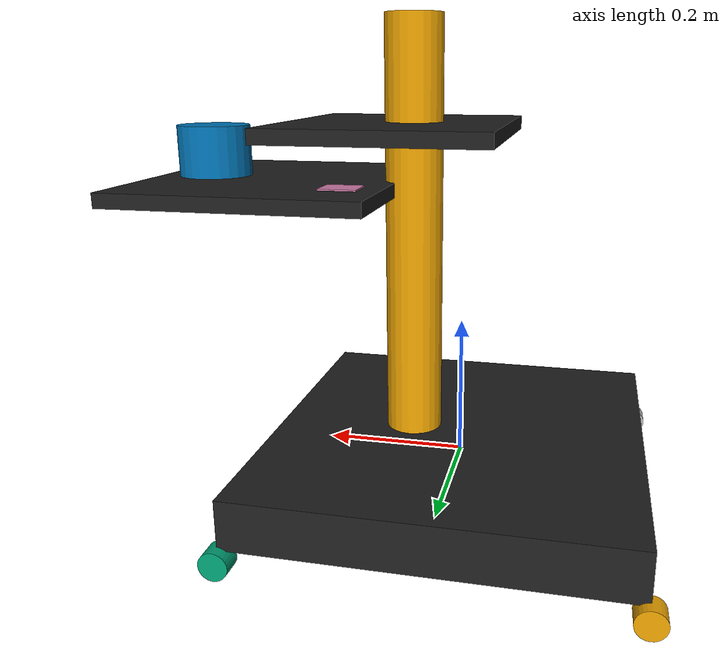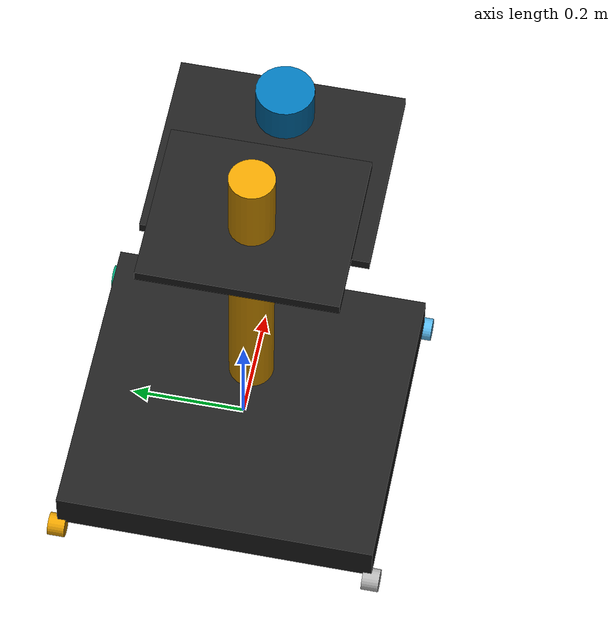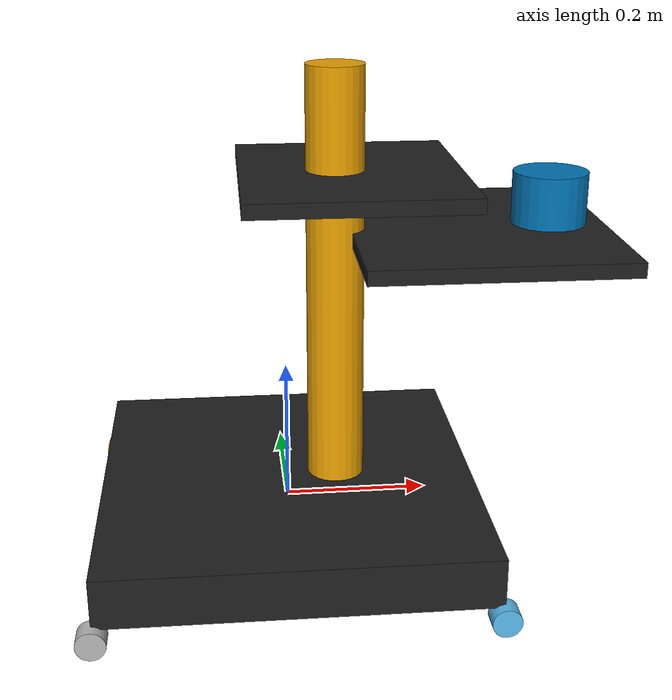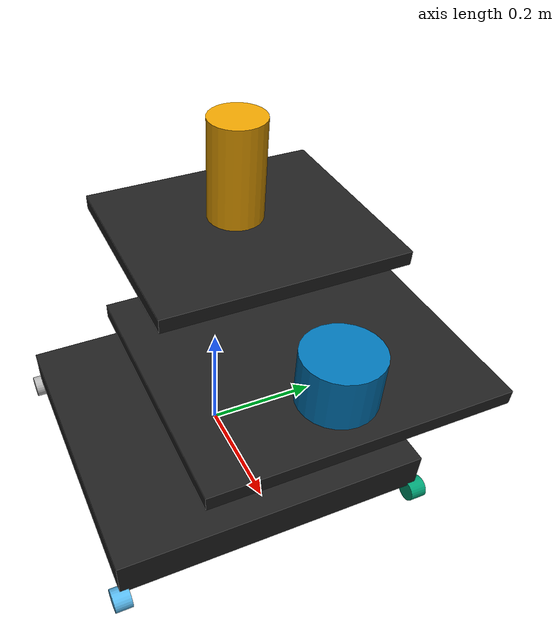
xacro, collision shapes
<?xml version="1.0"?>
<robot name="home_robot" xmlns:xacro="http://ros.org/wiki/xacro">
 <xacro:include filename="$(find robot_description)/urdf/common_properties.xacro"/>
<xacro:include filename="$(find robot_description)/urdf/_t265.urdf.xacro"/>
<xacro:include filename="$(find robot_description)/urdf/VLP-16.urdf.xacro"/>
<xacro:macro name ="home_robot_platform">
 <!-- Robot dimensions -->
  <xacro:property name="base_length" value="0.53" />
  <xacro:property name="base_width" value="0.56" />
  <xacro:property name="base_height" value="0.07" />
  <xacro:property name="wheel_diam" value="0.04" />
  <xacro:property name="wheel_width" value="0.03" />
  <xacro:property name="platform1_elevation" value="0.83" />
  <xacro:property name="platform2_elevation" value="1.0" />
  <xacro:property name="column_diam" value="0.04" />
  <xacro:property name="platform1_length" value="0.35" />
  <xacro:property name="platform1_width" value="0.40" />
  <xacro:property name="platform2_length" value="0.3" />
  <xacro:property name="platform2_width" value="0.35" />
  <xacro:property name="platform_height" value="0.02" />
  <xacro:property name="platform1_elevation" value="0.71" />
  <xacro:property name="platform2_elevation" value="0.87" />
  <xacro:property name="pi" value="3.1415926535897931" />

<!-- Macro to define wheels at back  -->
  <xacro:macro name="wheel_back" params="suffix reflect">

  <joint name="wheel_back_${suffix}_joint" type="continuous">
    <parent link="base_link"/>
    <child link="wheel_back_${suffix}_link"/>
    <axis xyz="0 0 1"/>
    <origin xyz="${-base_length/2} ${-base_width/2*reflect} ${wheel_diam/2 - base_height}" rpy="${-pi/2} 0 0"/>
  </joint>

  <link name="wheel_back_${suffix}_link">
    <visual>
      <geometry>
        <cylinder length="${wheel_width}" radius="${wheel_diam/2}"/>
      </geometry>
      <origin rpy="0 0 0" xyz="0 0 0"/>
      <material name="dark"/>
    </visual>

   <collision>
      <origin rpy="0 0 0" xyz="0 0 0"/>
      <geometry>
        <cylinder length="${wheel_width}" radius="${wheel_diam/2}"/>
      </geometry>
    </collision>

    <inertial>
 <!-- Center of mass origin -->
    <origin xyz="0 0 0"/>

      <mass value="3.4"/>
      <inertia ixx="0.0067" ixy="-0" ixz="0"
               iyy="0.0123" iyz="0"
               izz="0.0067" />
    </inertial>

  </link>

  </xacro:macro>

<!-- Macro to define wheels at front  -->
  <xacro:macro name="wheel_front" params="suffix reflect">

  <joint name="wheel_front_${suffix}_joint" type="continuous">
    <parent link="base_link"/>
    <child link="wheel_front_${suffix}_link"/>
    <axis xyz="0 0 1"/>
    <origin xyz="${base_length/2} ${-base_width/2*reflect} ${wheel_diam/2 - base_height}" rpy="${-pi/2} 0 0"/>
  </joint>

  <link name="wheel_front_${suffix}_link">
    <visual>
      <geometry>
        <cylinder length="${wheel_width}" radius="${wheel_diam/2}"/>
      </geometry>
      <origin rpy="0 0 0" xyz="0 0 0"/>
      <material name="dark"/>
    </visual>

   <collision>
      <origin rpy="0 0 0" xyz="0 0 0"/>
      <geometry>
        <cylinder length="${wheel_width}" radius="${wheel_diam/2}"/>
      </geometry>
    </collision>

    <inertial>
 <!-- Center of mass origin -->
    <origin xyz="0 0 0"/>

      <mass value="3.4"/>
      <inertia ixx="0.0067" ixy="-0" ixz="0"
               iyy="0.0123" iyz="0"
               izz="0.0067" />
    </inertial>

  </link>

  </xacro:macro>

<!-- Platforms column macro -->
  <joint name="platform_column_joint" type="fixed">
    <parent link="base_link"/>
    <child link="platform_column_link"/>
    <origin xyz="0.07 0 0.22"/>
  </joint>
 <link name="platform_column_link">
    <visual>
      <geometry>
          <cylinder length="${(platform2_elevation/2)+0.02}" radius="${column_diam/2}"/>
      </geometry>
      <origin rpy="0 0 0" xyz="0 0 0"/>
      <material name="dark"/>
    </visual>
   <collision>
      <origin rpy="0 0 0" xyz="0 0 0"/>
      <geometry>
        <cylinder length="${platform2_elevation-base_height}" radius="${column_diam}"/>
      </geometry>
   </collision>
   <inertial>

    <origin xyz="0 0 0" rpy="0 0 0"/>

      <mass value="1.25"/>
      <inertia ixx="0.045453" ixy="0" ixz="0"
               iyy="0.049627" iyz="0"
               izz="0.004174" />
    </inertial>

  </link>>

<!-- Platform dimensions -->
    <link name="base_link">
    <visual>
      <origin xyz="0 0 0"/>
      <geometry>
          <box size ="${base_length} ${base_width} ${base_height/2}"/>
      </geometry>
      <material name="light_black" />
    </visual>
   <collision>
      <origin xyz="0 0 0"/>
      <geometry>
        <box size ="${base_length} ${base_width} ${base_height}"/>
      </geometry>
    </collision>

</link>

<!-- Upper platform -->
<joint name="platform2_joint" type="fixed">
	<parent link="base_link"/>
	<child link="platform2_link"/>
        <origin xyz="${base_length/2-platform2_width/2} 0 ${(base_height + platform2_elevation)/2}"/>
</joint>

    <link name="platform2_link">
    <visual>
	<origin rpy="0 0 0" xyz="0 0 0"/>
      <geometry>
        <box size ="${platform2_length} ${platform2_width} ${platform_height}"/>
      </geometry>
      <material name="light_black" />
    </visual>
   <collision>
      <origin rpy="0 0 0" xyz="0 0 0"/>
      <geometry>
        <box size ="${platform2_length} ${platform2_width} ${platform_height}"/>
      </geometry>
    </collision>

    <inertial>

    <origin xyz="0 0 0" rpy="0 0 0"/>

      <mass value="3.12"/>
      <inertia ixx="0.065" ixy="0" ixz="0"
               iyy="0.0816" iyz="0"
               izz="0.147" />
    </inertial>

</link>

<!-- Lower platform -->
<joint name="platform1_joint" type="fixed">
	<parent link="base_link"/>
	<child link="platform1_link"/>
        <origin xyz="${base_length/2} 0 ${(base_height + platform1_elevation)/2}"/>
</joint>

    <link name="platform1_link">
    <visual>
        <origin rpy="0 0 0" xyz="0 0 0"/>
      <geometry>
        <box size ="${platform1_length} ${platform1_width} ${platform_height}"/>
      </geometry>
      <material name="light_black" />
    </visual>
   <collision>
      <origin rpy="0 0 0" xyz="0 0 0"/>
      <geometry>
        <box size ="${platform1_length} ${platform1_width} ${platform_height}"/>
      </geometry>
    </collision>

    <inertial>

    <origin xyz="0 0 0" rpy="0 0 0"/>

      <mass value="2.52"/>
      <inertia ixx="0.065" ixy="0" ixz="0"
               iyy="0.0816" iyz="0"
               izz="0.147" />
    </inertial>

</link>

<!-- Sensors -->

<xacro:VLP-16 parent="base_link" name="velodyne" topic="/velodyne_points2" organize_cloud="false" hz="10" samples="440" gpu="true">
    <origin xyz="${(base_length/2)+0.1} 0 ${((base_height + platform1_elevation)/2)+0.01}" rpy="0 0 0" />
</xacro:VLP-16>

<xacro:IG1 parent="base_link" name="IMU" topic="/imu/data">
    <origin xyz="${(base_length/2)-0.12} 0.1 ${((base_height + platform1_elevation)/2)}" rpy="0 0 0" />
</xacro:IG1>

<!-- Wheels -->
 <xacro:wheel_back suffix="left" reflect ="1"/>
 <xacro:wheel_back suffix="right" reflect ="-1"/>
 <xacro:wheel_front suffix="left" reflect="1"/>
 <xacro:wheel_front suffix="right" reflect="-1"/>

</xacro:macro>

<xacro:macro name="IG1" params="*origin parent:=base_link topic:=/imu/data name:=IMU">
    <joint name="${name}_sensor_joint" type="fixed">
        <xacro:insert_block name="origin" />
        <parent link="${parent}"/>
        <child link="${name}_sensor_link"/>
    </joint>

    <link name="${name}_sensor_link">
        <collision>
            <origin xyz="0 0 0" rpy="0 0 0"/>
            <geometry>
                <box size="0.051 0.045 0.024"/>
            </geometry>
        </collision>
        <visual>
            <origin xyz="0 0 0" rpy="0 0 0"/>
            <geometry>
                        <mesh filename="package://robot_description/meshes/sensors/IG1.stl" />
            </geometry>
            <material name="dark"/>
        </visual>
        <inertial>
            <mass value="0.001" />
            <origin xyz="0 0 0" rpy="0 0 0"/>
            <inertia ixx="0.00000015" ixy="0" ixz="0" iyy="0.00000015" iyz="0" izz="0.00000015" />
        </inertial>
    </link>

</xacro:macro>

<xacro:home_robot_platform />
</robot>

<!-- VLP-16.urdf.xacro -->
<robot xmlns:xacro="http://www.ros.org/wiki/xacro" name="VLP-16">
  <xacro:property name="M_PI" value="3.1415926535897931" />
  <xacro:macro name="VLP-16" params="*origin parent:=base_link name:=velodyne topic:=/velodyne_points hz:=10 lasers:=16 samples:=1875 collision_range:=0.3 min_range:=0.9 max_range:=130.0 noise:=0.008 min_angle:=-${M_PI} max_angle:=${M_PI} gpu:=false">

    <joint name="${name}_base_mount_joint" type="fixed">
      <xacro:insert_block name="origin" />
      <parent link="${parent}"/>
      <child link="${name}_base_link"/>
    </joint>

    <link name="${name}_base_link">
      <inertial>
        <mass value="0.83"/>
        <origin xyz="0 0 0.03585"/>
        <inertia ixx="${(0.83 * (3.0*0.0516*0.0516 + 0.0717*0.0717)) / 12.0}" ixy="0" ixz="0"
          iyy="${(0.83 * (3.0*0.0516*0.0516 + 0.0717*0.0717)) / 12.0}" iyz="0"
          izz="${0.5 * 0.83 * (0.0516*0.0516)}"/>
      </inertial>
      <visual>
        <geometry>
          <mesh filename="package://robot_description/meshes/VLP16/VLP16_base_1.dae" />
        </geometry>
      </visual>
      <visual>
        <geometry>
          <mesh filename="package://robot_description/meshes/VLP16/VLP16_base_2.dae" />
        </geometry>
      </visual>
      <collision>
        <origin rpy="0 0 0" xyz="0 0 0.03585"/>
        <geometry>
          <cylinder radius="0.0516" length="0.0717"/>
        </geometry>
      </collision>
    </link>

    <joint name="${name}_base_scan_joint" type="fixed" >
      <origin xyz="0 0 0.0377" rpy="0 0 0" />
      <parent link="${name}_base_link" />
      <child link="${name}"/>
    </joint>

    <link name="${name}">
      <inertial>
        <mass value="0.01"/>
        <origin xyz="0 0 0"/>
        <inertia ixx="1e-7" ixy="0" ixz="0" iyy="1e-7" iyz="0" izz="1e-7"/>
      </inertial>
      <visual>
        <origin xyz="0 0 -0.0377" />
        <geometry>
          <mesh filename="package://robot_description/meshes/VLP16/VLP16_scan.dae" />
        </geometry>
      </visual>
    </link>

    <!-- Gazebo requires the velodyne_gazebo_plugins package -->
    <gazebo reference="${name}">
      <xacro:if value="${gpu}">
        <sensor type="gpu_ray" name="${name}-VLP16">
          <pose>0 0 0 0 0 0</pose>
          <visualize>false</visualize>
          <update_rate>${hz}</update_rate>
          <ray>
            <scan>
              <horizontal>
                <samples>${samples}</samples>
                <resolution>1</resolution>
                <min_angle>${min_angle}</min_angle>
                <max_angle>${max_angle}</max_angle>
              </horizontal>
              <vertical>
                <samples>${lasers}</samples>
                <resolution>1</resolution>
                <min_angle>-${15.0*M_PI/180.0}</min_angle>
                <max_angle> ${15.0*M_PI/180.0}</max_angle>
              </vertical>
            </scan>
            <range>
              <min>${collision_range}</min>
              <max>${max_range+1}</max>
              <resolution>0.001</resolution>
            </range>
            <noise>
              <type>gaussian</type>
              <mean>0.0</mean>
              <stddev>0.0</stddev>
            </noise>
          </ray>
          <plugin name="gazebo_ros_laser_controller" filename="libgazebo_ros_velodyne_gpu_laser.so">
            <topicName>${topic}</topicName>
            <frameName>${name}</frameName>
            <min_range>${min_range}</min_range>
            <max_range>${max_range}</max_range>
            <gaussianNoise>${noise}</gaussianNoise>
          </plugin>
        </sensor>
      </xacro:if>
      <xacro:unless value="${gpu}">
        <sensor type="ray" name="${name}-VLP16">
          <pose>0 0 0 0 0 0</pose>
          <visualize>false</visualize>
          <update_rate>${hz}</update_rate>
          <ray>
            <scan>
              <horizontal>
                <samples>${samples}</samples>
                <resolution>1</resolution>
                <min_angle>${min_angle}</min_angle>
                <max_angle>${max_angle}</max_angle>
              </horizontal>
              <vertical>
                <samples>${lasers}</samples>
                <resolution>1</resolution>
                <min_angle>-${15.0*M_PI/180.0}</min_angle>
                <max_angle> ${15.0*M_PI/180.0}</max_angle>
              </vertical>
            </scan>
            <range>
              <min>${collision_range}</min>
              <max>${max_range+1}</max>
              <resolution>0.001</resolution>
            </range>
            <noise>
              <type>gaussian</type>
              <mean>0.0</mean>
              <stddev>0.0</stddev>
            </noise>
          </ray>
          <plugin name="gazebo_ros_laser_controller" filename="libgazebo_ros_velodyne_laser.so">
            <topicName>${topic}</topicName>
            <frameName>${name}</frameName>
            <min_range>${min_range}</min_range>
            <max_range>${max_range}</max_range>
            <gaussianNoise>${noise}</gaussianNoise>
          </plugin>
        </sensor>
      </xacro:unless>
    </gazebo>

  </xacro:macro>
</robot>
